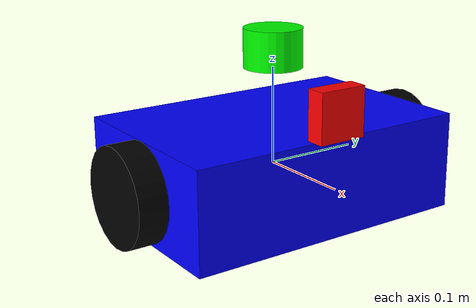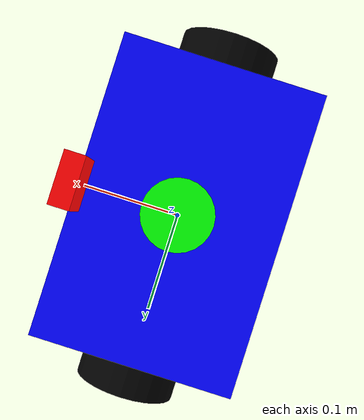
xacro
<?xml version="1.0"?>
<robot name="simple_robot" xmlns:xacro="http://www.ros.org/wiki/xacro">

  <!-- Base Link -->
  <link name="base_link">
    <visual>
      <geometry>
        <box size="0.2 0.3 0.1"/>
      </geometry>
      <material name="blue">
        <color rgba="0 0 1 1"/>
      </material>
    </visual>
    <collision>
      <geometry>
        <box size="0.2 0.3 0.1"/>
      </geometry>
    </collision>
    <inertial>
      <mass value="5.0"/>
      <inertia ixx="0.1" ixy="0.0" ixz="0.0" iyy="0.1" iyz="0.0" izz="0.1"/>
    </inertial>
  </link>

  <!-- Left Wheel -->
  <link name="left_wheel_link">
    <visual>
      <geometry>
        <cylinder radius="0.05" length="0.04"/>
      </geometry>
      <material name="black">
        <color rgba="0 0 0 1"/>
      </material>
    </visual>
    <collision>
      <geometry>
        <cylinder radius="0.05" length="0.04"/>
      </geometry>
    </collision>
    <inertial>
      <mass value="0.5"/>
      <inertia ixx="0.001" ixy="0.0" ixz="0.0" iyy="0.001" iyz="0.0" izz="0.001"/>
    </inertial>
  </link>

  <joint name="left_wheel_joint" type="continuous">
    <parent link="base_link"/>
    <child link="left_wheel_link"/>
    <origin xyz="0.0 -0.16 0.0" rpy="1.57079632679 0 0"/>
    <axis xyz="0 0 1"/>
  </joint>

  <!-- Right Wheel -->
  <link name="right_wheel_link">
    <visual>
      <geometry>
        <cylinder radius="0.05" length="0.04"/>
      </geometry>
      <material name="black">
        <color rgba="0 0 0 1"/>
      </material>
    </visual>
    <collision>
      <geometry>
        <cylinder radius="0.05" length="0.04"/>
      </geometry>
    </collision>
    <inertial>
      <mass value="0.5"/>
      <inertia ixx="0.001" ixy="0.0" ixz="0.0" iyy="0.001" iyz="0.0" izz="0.001"/>
    </inertial>
  </link>

  <joint name="right_wheel_joint" type="continuous">
    <parent link="base_link"/>
    <child link="right_wheel_link"/>
    <origin xyz="0.0 0.16 0.0" rpy="1.57079632679 0 0"/>
    <axis xyz="0 0 1"/>
  </joint>

  <!-- Gazebo specific settings -->
  <gazebo reference="base_link">
    <material>Gazebo/Blue</material>
  </gazebo>
  <gazebo reference="left_wheel_link">
    <material>Gazebo/Black</material>
  </gazebo>
  <gazebo reference="right_wheel_link">
    <material>Gazebo/Black</material>
  </gazebo>

  <!-- Differential Drive Controller Plugin -->
  <gazebo>
    <plugin name="differential_drive_controller" filename="libgazebo_ros_diff_drive.so">
      <ros>
        <namespace>/</namespace>
      </ros>
      <left_joint>left_wheel_joint</left_joint>
      <right_joint>right_wheel_joint</right_joint>
      <wheel_separation>0.32</wheel_separation>
      <wheel_diameter>0.1</wheel_diameter>
      <publish_odom>true</publish_odom>
      <publish_odom_tf>true</publish_odom_tf>
      <publish_wheel_tf>true</publish_wheel_tf>
      <odometry_frame>odom</odometry_frame>
      <robot_base_frame>base_link</robot_base_frame>
    </plugin>
  </gazebo>

  <!-- Camera Link -->
  <link name="camera_link">
    <visual>
      <geometry>
        <box size="0.02 0.05 0.05"/>
      </geometry>
      <material name="red">
        <color rgba="1 0 0 1"/>
      </material>
    </visual>
    <collision>
      <geometry>
        <box size="0.02 0.05 0.05"/>
      </geometry>
    </collision>
    <inertial>
      <mass value="0.1"/>
      <inertia ixx="0.001" ixy="0.0" ixz="0.0" iyy="0.001" iyz="0.0" izz="0.001"/>
    </inertial>
  </link>

  <joint name="camera_joint" type="fixed">
    <parent link="base_link"/>
    <child link="camera_link"/>
    <origin xyz="0.1 0 0.075" rpy="0 0 0"/>
  </joint>

  <!-- Gazebo Camera Plugin -->
  <gazebo reference="camera_link">
    <sensor name="camera" type="camera">
      <always_on>true</always_on>
      <update_rate>30.0</update_rate>
      <camera>
        <horizontal_fov>1.047</horizontal_fov>
        <image>
          <width>640</width>
          <height>480</height>
          <format>R8G8B8</format>
        </image>
        <clip>
          <near>0.1</near>
          <far>100</far>
        </clip>
      </camera>
      <plugin name="camera_controller" filename="libgazebo_ros_camera.so">
        <ros>
          <namespace>/</namespace>
          <argument>--ros-args -r /image_raw:=/camera/image_raw</argument>
        </ros>
        <camera_name>simple_camera</camera_name>
        <frame_name>camera_link_optical</frame_name>
      </plugin>
    </sensor>
  </gazebo>

  <!-- LiDAR Link -->
  <link name="lidar_link">
    <visual>
      <geometry>
        <cylinder radius="0.03" length="0.04"/>
      </geometry>
      <material name="green">
        <color rgba="0 1 0 1"/>
      </material>
    </visual>
    <collision>
      <geometry>
        <cylinder radius="0.03" length="0.04"/>
      </geometry>
    </collision>
    <inertial>
      <mass value="0.1"/>
      <inertia ixx="0.001" ixy="0.0" ixz="0.0" iyy="0.001" iyz="0.0" izz="0.001"/>
    </inertial>
  </link>

  <joint name="lidar_joint" type="fixed">
    <parent link="base_link"/>
    <child link="lidar_link"/>
    <origin xyz="0.0 0 0.12" rpy="0 0 0"/>
  </joint>

  <!-- Gazebo LiDAR Plugin -->
  <gazebo reference="lidar_link">
    <sensor name="lidar" type="ray">
      <always_on>true</always_on>
      <update_rate>10.0</update_rate>
      <ray>
        <scan>
          <horizontal>
            <samples>360</samples>
            <resolution>1</resolution>
            <min_angle>-3.14159265359</min_angle>
            <max_angle>3.14159265359</max_angle>
          </horizontal>
        </scan>
        <range>
          <min>0.1</min>
          <max>10.0</max>
          <resolution>0.01</resolution>
        </range>
      </ray>
      <plugin name="gazebo_ros_lidar_controller" filename="libgazebo_ros_laser.so">
        <ros>
          <namespace>/</namespace>
          <argument>--ros-args -r /scan:=/lidar/scan</argument>
        </ros>
        <topicName>/lidar/scan</topicName>
        <frameName>lidar_link</frameName>
      </plugin>
    </sensor>
  </gazebo>

</robot>
